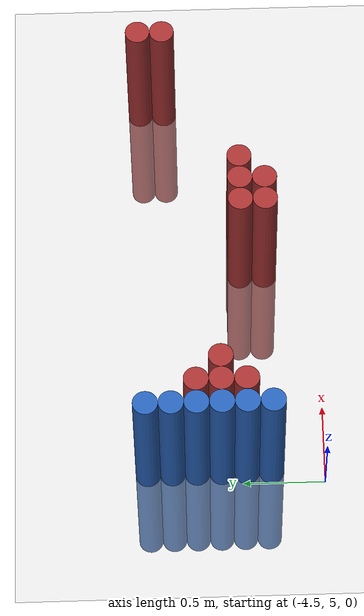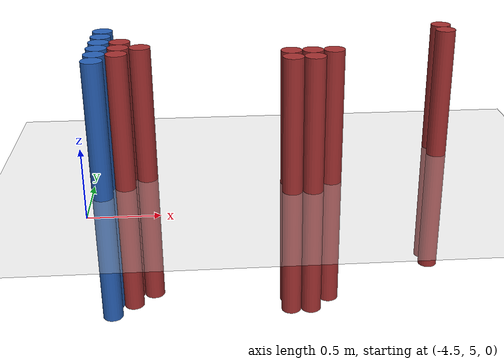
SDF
<sdf version="1.6">
 <world name="default">
  <model name="ground_plane">
   <static>1</static>
   <link name="link">
    <collision name="collision">
     <geometry><plane><normal>0 0 1</normal><size>100 100</size></plane></geometry>
     <surface><friction><ode><mu>100</mu><mu2>50</mu2></ode></friction></surface>
    </collision>
    <visual name="visual">
     <cast_shadows>0</cast_shadows>
     <geometry><plane><normal>0 0 1</normal><size>100 100</size></plane></geometry>
     <material>
      <script><uri>file://media/materials/scripts/gazebo.material</uri><name>Gazebo/Grey</name></script>
     </material>
    </visual>
   </link>
  </model>
  <model name="unit_cylinder_97">
   <static>1</static>
   <pose>-4.425000 5.325000 0.000000 0.000000 0.000000 0.000000</pose>
   <link name="link">
    <inertial>
     <mass>1</mass>
     <inertia><ixx>0.145833</ixx><ixy>0</ixy><ixz>0</ixz><iyy>0.145833</iyy><iyz>0</iyz><izz>0.125</izz></inertia>
    </inertial>
    <collision name="collision">
     <geometry><cylinder><radius>0.075000</radius><length>2</length></cylinder></geometry>
    </collision>
    <visual name="visual">
     <geometry><cylinder><radius>0.075000</radius><length>2</length></cylinder></geometry>
     <material>
      <ambient>0.152000 0.379000 0.720000 1</ambient>
      <diffuse>0.152000 0.379000 0.720000 1</diffuse>
     </material>
     <material>
      <script><name>Gazebo/Grey</name><uri>file://media/materials/scripts/gazebo.material</uri></script>
     </material>
    </visual>
   </link>
  </model>
  <model name="unit_cylinder_98">
   <static>1</static>
   <pose>-4.425000 5.475000 0.000000 0.000000 0.000000 0.000000</pose>
   <link name="link">
    <inertial>
     <mass>1</mass>
     <inertia><ixx>0.145833</ixx><ixy>0</ixy><ixz>0</ixz><iyy>0.145833</iyy><iyz>0</iyz><izz>0.125</izz></inertia>
    </inertial>
    <collision name="collision">
     <geometry><cylinder><radius>0.075000</radius><length>2</length></cylinder></geometry>
    </collision>
    <visual name="visual">
     <geometry><cylinder><radius>0.075000</radius><length>2</length></cylinder></geometry>
     <material>
      <ambient>0.152000 0.379000 0.720000 1</ambient>
      <diffuse>0.152000 0.379000 0.720000 1</diffuse>
     </material>
     <material>
      <script><name>Gazebo/Grey</name><uri>file://media/materials/scripts/gazebo.material</uri></script>
     </material>
    </visual>
   </link>
  </model>
  <model name="unit_cylinder_99">
   <static>1</static>
   <pose>-4.425000 5.625000 0.000000 0.000000 0.000000 0.000000</pose>
   <link name="link">
    <inertial>
     <mass>1</mass>
     <inertia><ixx>0.145833</ixx><ixy>0</ixy><ixz>0</ixz><iyy>0.145833</iyy><iyz>0</iyz><izz>0.125</izz></inertia>
    </inertial>
    <collision name="collision">
     <geometry><cylinder><radius>0.075000</radius><length>2</length></cylinder></geometry>
    </collision>
    <visual name="visual">
     <geometry><cylinder><radius>0.075000</radius><length>2</length></cylinder></geometry>
     <material>
      <ambient>0.152000 0.379000 0.720000 1</ambient>
      <diffuse>0.152000 0.379000 0.720000 1</diffuse>
     </material>
     <material>
      <script><name>Gazebo/Grey</name><uri>file://media/materials/scripts/gazebo.material</uri></script>
     </material>
    </visual>
   </link>
  </model>
  <model name="unit_cylinder_100">
   <static>1</static>
   <pose>-4.425000 5.775000 0.000000 0.000000 0.000000 0.000000</pose>
   <link name="link">
    <inertial>
     <mass>1</mass>
     <inertia><ixx>0.145833</ixx><ixy>0</ixy><ixz>0</ixz><iyy>0.145833</iyy><iyz>0</iyz><izz>0.125</izz></inertia>
    </inertial>
    <collision name="collision">
     <geometry><cylinder><radius>0.075000</radius><length>2</length></cylinder></geometry>
    </collision>
    <visual name="visual">
     <geometry><cylinder><radius>0.075000</radius><length>2</length></cylinder></geometry>
     <material>
      <ambient>0.152000 0.379000 0.720000 1</ambient>
      <diffuse>0.152000 0.379000 0.720000 1</diffuse>
     </material>
     <material>
      <script><name>Gazebo/Grey</name><uri>file://media/materials/scripts/gazebo.material</uri></script>
     </material>
    </visual>
   </link>
  </model>
  <model name="unit_cylinder_101">
   <static>1</static>
   <pose>-4.425000 5.925000 0.000000 0.000000 0.000000 0.000000</pose>
   <link name="link">
    <inertial>
     <mass>1</mass>
     <inertia><ixx>0.145833</ixx><ixy>0</ixy><ixz>0</ixz><iyy>0.145833</iyy><iyz>0</iyz><izz>0.125</izz></inertia>
    </inertial>
    <collision name="collision">
     <geometry><cylinder><radius>0.075000</radius><length>2</length></cylinder></geometry>
    </collision>
    <visual name="visual">
     <geometry><cylinder><radius>0.075000</radius><length>2</length></cylinder></geometry>
     <material>
      <ambient>0.152000 0.379000 0.720000 1</ambient>
      <diffuse>0.152000 0.379000 0.720000 1</diffuse>
     </material>
     <material>
      <script><name>Gazebo/Grey</name><uri>file://media/materials/scripts/gazebo.material</uri></script>
     </material>
    </visual>
   </link>
  </model>
  <model name="unit_cylinder_102">
   <static>1</static>
   <pose>-4.425000 6.075000 0.000000 0.000000 0.000000 0.000000</pose>
   <link name="link">
    <inertial>
     <mass>1</mass>
     <inertia><ixx>0.145833</ixx><ixy>0</ixy><ixz>0</ixz><iyy>0.145833</iyy><iyz>0</iyz><izz>0.125</izz></inertia>
    </inertial>
    <collision name="collision">
     <geometry><cylinder><radius>0.075000</radius><length>2</length></cylinder></geometry>
    </collision>
    <visual name="visual">
     <geometry><cylinder><radius>0.075000</radius><length>2</length></cylinder></geometry>
     <material>
      <ambient>0.152000 0.379000 0.720000 1</ambient>
      <diffuse>0.152000 0.379000 0.720000 1</diffuse>
     </material>
     <material>
      <script><name>Gazebo/Grey</name><uri>file://media/materials/scripts/gazebo.material</uri></script>
     </material>
    </visual>
   </link>
  </model>
  <model name="unit_cylinder_126">
   <static>1</static>
   <pose>-4.275000 5.475000 0.000000 0.000000 0.000000 0.000000</pose>
   <link name="link">
    <inertial>
     <mass>1</mass>
     <inertia><ixx>0.145833</ixx><ixy>0</ixy><ixz>0</ixz><iyy>0.145833</iyy><iyz>0</iyz><izz>0.125</izz></inertia>
    </inertial>
    <collision name="collision">
     <geometry><cylinder><radius>0.075000</radius><length>2</length></cylinder></geometry>
    </collision>
    <visual name="visual">
     <geometry><cylinder><radius>0.075000</radius><length>2</length></cylinder></geometry>
     <material>
      <ambient>0.648000 0.192000 0.192000 1</ambient>
      <diffuse>0.648000 0.192000 0.192000 1</diffuse>
     </material>
     <material>
      <script><name>Gazebo/Grey</name><uri>file://media/materials/scripts/gazebo.material</uri></script>
     </material>
    </visual>
   </link>
  </model>
  <model name="unit_cylinder_127">
   <static>1</static>
   <pose>-4.275000 5.625000 0.000000 0.000000 0.000000 0.000000</pose>
   <link name="link">
    <inertial>
     <mass>1</mass>
     <inertia><ixx>0.145833</ixx><ixy>0</ixy><ixz>0</ixz><iyy>0.145833</iyy><iyz>0</iyz><izz>0.125</izz></inertia>
    </inertial>
    <collision name="collision">
     <geometry><cylinder><radius>0.075000</radius><length>2</length></cylinder></geometry>
    </collision>
    <visual name="visual">
     <geometry><cylinder><radius>0.075000</radius><length>2</length></cylinder></geometry>
     <material>
      <ambient>0.648000 0.192000 0.192000 1</ambient>
      <diffuse>0.648000 0.192000 0.192000 1</diffuse>
     </material>
     <material>
      <script><name>Gazebo/Grey</name><uri>file://media/materials/scripts/gazebo.material</uri></script>
     </material>
    </visual>
   </link>
  </model>
  <model name="unit_cylinder_128">
   <static>1</static>
   <pose>-4.275000 5.775000 0.000000 0.000000 0.000000 0.000000</pose>
   <link name="link">
    <inertial>
     <mass>1</mass>
     <inertia><ixx>0.145833</ixx><ixy>0</ixy><ixz>0</ixz><iyy>0.145833</iyy><iyz>0</iyz><izz>0.125</izz></inertia>
    </inertial>
    <collision name="collision">
     <geometry><cylinder><radius>0.075000</radius><length>2</length></cylinder></geometry>
    </collision>
    <visual name="visual">
     <geometry><cylinder><radius>0.075000</radius><length>2</length></cylinder></geometry>
     <material>
      <ambient>0.648000 0.192000 0.192000 1</ambient>
      <diffuse>0.648000 0.192000 0.192000 1</diffuse>
     </material>
     <material>
      <script><name>Gazebo/Grey</name><uri>file://media/materials/scripts/gazebo.material</uri></script>
     </material>
    </visual>
   </link>
  </model>
  <model name="unit_cylinder_140">
   <static>1</static>
   <pose>-4.125000 5.625000 0.000000 0.000000 0.000000 0.000000</pose>
   <link name="link">
    <inertial>
     <mass>1</mass>
     <inertia><ixx>0.145833</ixx><ixy>0</ixy><ixz>0</ixz><iyy>0.145833</iyy><iyz>0</iyz><izz>0.125</izz></inertia>
    </inertial>
    <collision name="collision">
     <geometry><cylinder><radius>0.075000</radius><length>2</length></cylinder></geometry>
    </collision>
    <visual name="visual">
     <geometry><cylinder><radius>0.075000</radius><length>2</length></cylinder></geometry>
     <material>
      <ambient>0.648000 0.192000 0.192000 1</ambient>
      <diffuse>0.648000 0.192000 0.192000 1</diffuse>
     </material>
     <material>
      <script><name>Gazebo/Grey</name><uri>file://media/materials/scripts/gazebo.material</uri></script>
     </material>
    </visual>
   </link>
  </model>
  <model name="unit_cylinder_158">
   <static>1</static>
   <pose>-3.075000 5.325000 0.000000 0.000000 0.000000 0.000000</pose>
   <link name="link">
    <inertial>
     <mass>1</mass>
     <inertia><ixx>0.145833</ixx><ixy>0</ixy><ixz>0</ixz><iyy>0.145833</iyy><iyz>0</iyz><izz>0.125</izz></inertia>
    </inertial>
    <collision name="collision">
     <geometry><cylinder><radius>0.075000</radius><length>2</length></cylinder></geometry>
    </collision>
    <visual name="visual">
     <geometry><cylinder><radius>0.075000</radius><length>2</length></cylinder></geometry>
     <material>
      <ambient>0.648000 0.192000 0.192000 1</ambient>
      <diffuse>0.648000 0.192000 0.192000 1</diffuse>
     </material>
     <material>
      <script><name>Gazebo/Grey</name><uri>file://media/materials/scripts/gazebo.material</uri></script>
     </material>
    </visual>
   </link>
  </model>
  <model name="unit_cylinder_159">
   <static>1</static>
   <pose>-3.075000 5.475000 0.000000 0.000000 0.000000 0.000000</pose>
   <link name="link">
    <inertial>
     <mass>1</mass>
     <inertia><ixx>0.145833</ixx><ixy>0</ixy><ixz>0</ixz><iyy>0.145833</iyy><iyz>0</iyz><izz>0.125</izz></inertia>
    </inertial>
    <collision name="collision">
     <geometry><cylinder><radius>0.075000</radius><length>2</length></cylinder></geometry>
    </collision>
    <visual name="visual">
     <geometry><cylinder><radius>0.075000</radius><length>2</length></cylinder></geometry>
     <material>
      <ambient>0.648000 0.192000 0.192000 1</ambient>
      <diffuse>0.648000 0.192000 0.192000 1</diffuse>
     </material>
     <material>
      <script><name>Gazebo/Grey</name><uri>file://media/materials/scripts/gazebo.material</uri></script>
     </material>
    </visual>
   </link>
  </model>
  <model name="unit_cylinder_163">
   <static>1</static>
   <pose>-2.925000 5.325000 0.000000 0.000000 0.000000 0.000000</pose>
   <link name="link">
    <inertial>
     <mass>1</mass>
     <inertia><ixx>0.145833</ixx><ixy>0</ixy><ixz>0</ixz><iyy>0.145833</iyy><iyz>0</iyz><izz>0.125</izz></inertia>
    </inertial>
    <collision name="collision">
     <geometry><cylinder><radius>0.075000</radius><length>2</length></cylinder></geometry>
    </collision>
    <visual name="visual">
     <geometry><cylinder><radius>0.075000</radius><length>2</length></cylinder></geometry>
     <material>
      <ambient>0.648000 0.192000 0.192000 1</ambient>
      <diffuse>0.648000 0.192000 0.192000 1</diffuse>
     </material>
     <material>
      <script><name>Gazebo/Grey</name><uri>file://media/materials/scripts/gazebo.material</uri></script>
     </material>
    </visual>
   </link>
  </model>
  <model name="unit_cylinder_164">
   <static>1</static>
   <pose>-2.925000 5.475000 0.000000 0.000000 0.000000 0.000000</pose>
   <link name="link">
    <inertial>
     <mass>1</mass>
     <inertia><ixx>0.145833</ixx><ixy>0</ixy><ixz>0</ixz><iyy>0.145833</iyy><iyz>0</iyz><izz>0.125</izz></inertia>
    </inertial>
    <collision name="collision">
     <geometry><cylinder><radius>0.075000</radius><length>2</length></cylinder></geometry>
    </collision>
    <visual name="visual">
     <geometry><cylinder><radius>0.075000</radius><length>2</length></cylinder></geometry>
     <material>
      <ambient>0.648000 0.192000 0.192000 1</ambient>
      <diffuse>0.648000 0.192000 0.192000 1</diffuse>
     </material>
     <material>
      <script><name>Gazebo/Grey</name><uri>file://media/materials/scripts/gazebo.material</uri></script>
     </material>
    </visual>
   </link>
  </model>
  <model name="unit_cylinder_169">
   <static>1</static>
   <pose>-2.775000 5.475000 0.000000 0.000000 0.000000 0.000000</pose>
   <link name="link">
    <inertial>
     <mass>1</mass>
     <inertia><ixx>0.145833</ixx><ixy>0</ixy><ixz>0</ixz><iyy>0.145833</iyy><iyz>0</iyz><izz>0.125</izz></inertia>
    </inertial>
    <collision name="collision">
     <geometry><cylinder><radius>0.075000</radius><length>2</length></cylinder></geometry>
    </collision>
    <visual name="visual">
     <geometry><cylinder><radius>0.075000</radius><length>2</length></cylinder></geometry>
     <material>
      <ambient>0.648000 0.192000 0.192000 1</ambient>
      <diffuse>0.648000 0.192000 0.192000 1</diffuse>
     </material>
     <material>
      <script><name>Gazebo/Grey</name><uri>file://media/materials/scripts/gazebo.material</uri></script>
     </material>
    </visual>
   </link>
  </model>
  <model name="unit_cylinder_196">
   <static>1</static>
   <pose>-1.875000 5.925000 0.000000 0.000000 0.000000 0.000000</pose>
   <link name="link">
    <inertial>
     <mass>1</mass>
     <inertia><ixx>0.145833</ixx><ixy>0</ixy><ixz>0</ixz><iyy>0.145833</iyy><iyz>0</iyz><izz>0.125</izz></inertia>
    </inertial>
    <collision name="collision">
     <geometry><cylinder><radius>0.075000</radius><length>2</length></cylinder></geometry>
    </collision>
    <visual name="visual">
     <geometry><cylinder><radius>0.075000</radius><length>2</length></cylinder></geometry>
     <material>
      <ambient>0.648000 0.192000 0.192000 1</ambient>
      <diffuse>0.648000 0.192000 0.192000 1</diffuse>
     </material>
     <material>
      <script><name>Gazebo/Grey</name><uri>file://media/materials/scripts/gazebo.material</uri></script>
     </material>
    </visual>
   </link>
  </model>
  <model name="unit_cylinder_197">
   <static>1</static>
   <pose>-1.875000 6.075000 0.000000 0.000000 0.000000 0.000000</pose>
   <link name="link">
    <inertial>
     <mass>1</mass>
     <inertia><ixx>0.145833</ixx><ixy>0</ixy><ixz>0</ixz><iyy>0.145833</iyy><iyz>0</iyz><izz>0.125</izz></inertia>
    </inertial>
    <collision name="collision">
     <geometry><cylinder><radius>0.075000</radius><length>2</length></cylinder></geometry>
    </collision>
    <visual name="visual">
     <geometry><cylinder><radius>0.075000</radius><length>2</length></cylinder></geometry>
     <material>
      <ambient>0.648000 0.192000 0.192000 1</ambient>
      <diffuse>0.648000 0.192000 0.192000 1</diffuse>
     </material>
     <material>
      <script><name>Gazebo/Grey</name><uri>file://media/materials/scripts/gazebo.material</uri></script>
     </material>
    </visual>
   </link>
  </model>
 </world>
</sdf>
